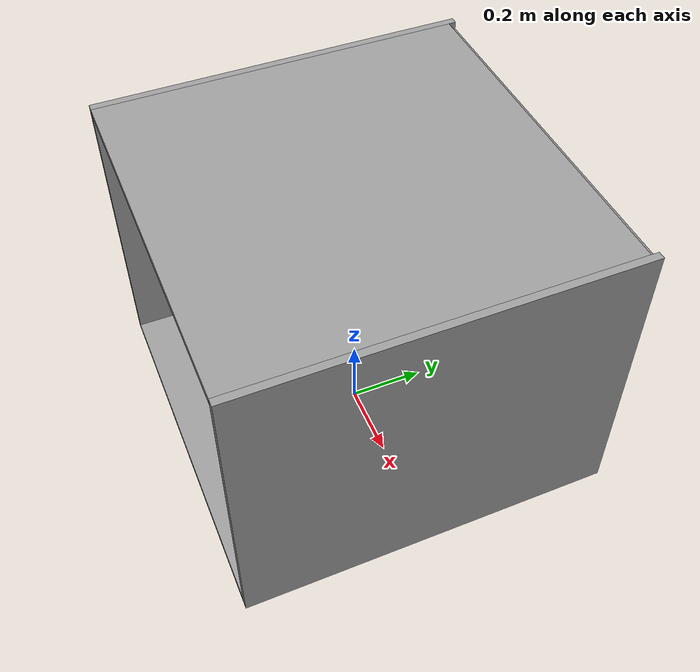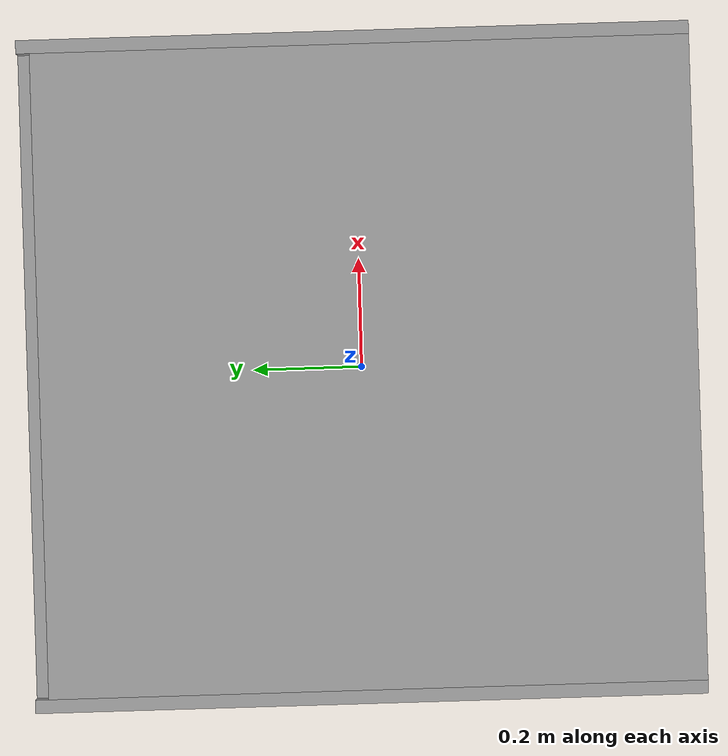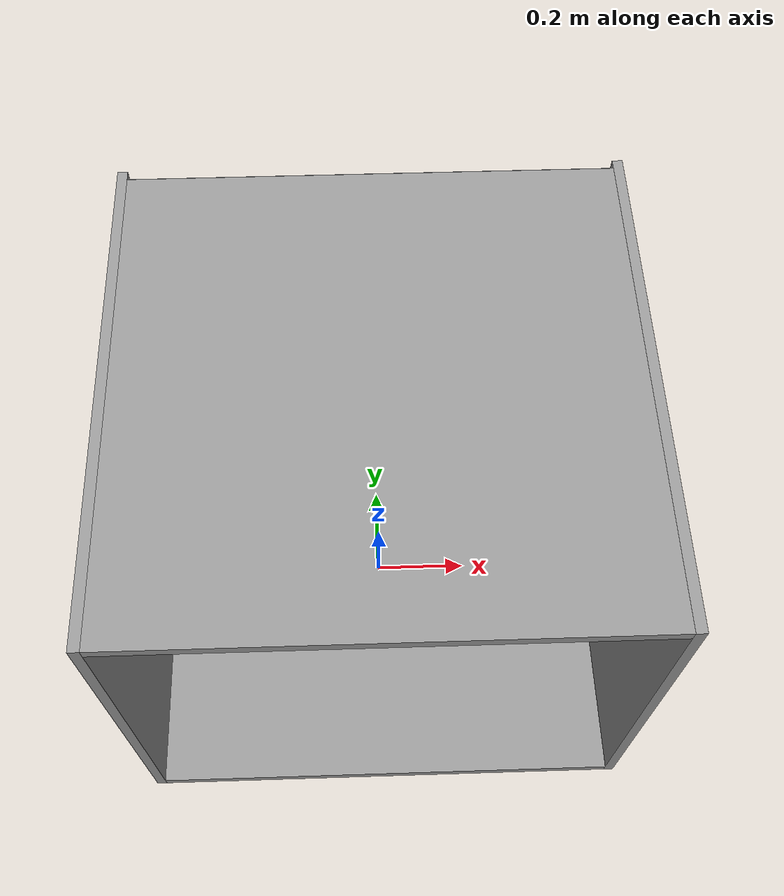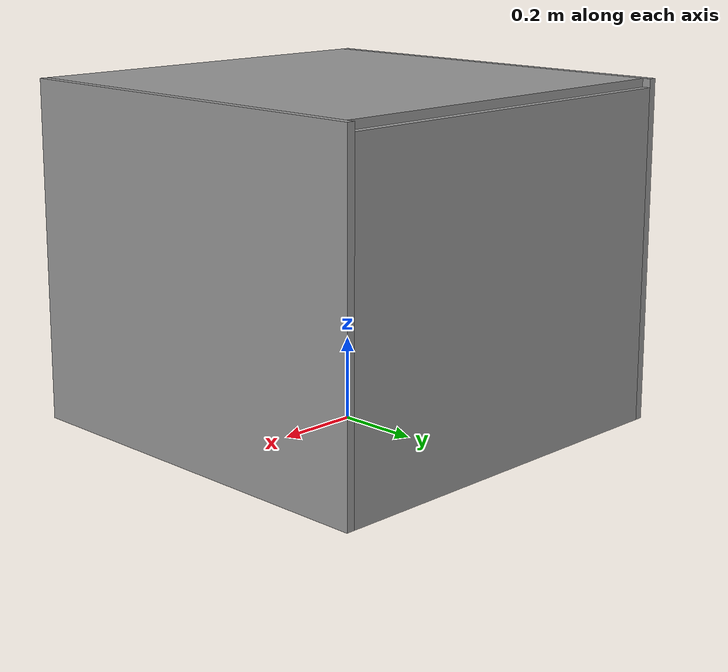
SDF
<?xml version="1.0" ?>
<sdf version="1.5">
  <model name="shelf_1x1x.8_1l">
    <static>true</static>
    <link name="link">

      <collision name="box_1">
        <pose>-0.49 0.0 0.41000000000000003  0 0 0</pose>
        <geometry>
          <box>
            <size>0.020000000000000018 1.0 0.8200000000000001 </size>
          </box>
        </geometry>
      </collision>
      <visual name="box_1">
        <pose>-0.49 0.0 0.41000000000000003  0 0 0</pose>
        <geometry>
          <box>
            <size>0.020000000000000018 1.0 0.8200000000000001 </size>
          </box>
        </geometry>
        <material>
          <script>
            <name>Gazebo/Grey</name>
            <uri>file://media/materials/scripts/gazebo.material</uri>
          </script>
        </material>
      </visual>

      <collision name="box_2">
        <pose>0.49 0.0 0.41000000000000003  0 0 0</pose>
        <geometry>
          <box>
            <size>0.020000000000000018 1.0 0.8200000000000001 </size>
          </box>
        </geometry>
      </collision>
      <visual name="box_2">
        <pose>0.49 0.0 0.41000000000000003  0 0 0</pose>
        <geometry>
          <box>
            <size>0.020000000000000018 1.0 0.8200000000000001 </size>
          </box>
        </geometry>
        <material>
          <script>
            <name>Gazebo/Grey</name>
            <uri>file://media/materials/scripts/gazebo.material</uri>
          </script>
        </material>
      </visual>

      <collision name="box_3">
        <pose>0.0 0.49 0.4  0 0 0</pose>
        <geometry>
          <box>
            <size>0.96 0.020000000000000018 0.8 </size>
          </box>
        </geometry>
      </collision>
      <visual name="box_3">
        <pose>0.0 0.49 0.4  0 0 0</pose>
        <geometry>
          <box>
            <size>0.96 0.020000000000000018 0.8 </size>
          </box>
        </geometry>
        <material>
          <script>
            <name>Gazebo/Grey</name>
            <uri>file://media/materials/scripts/gazebo.material</uri>
          </script>
        </material>
      </visual>

      <collision name="box_4">
        <pose>0.0 -0.010000000000000009 0.01  0 0 0</pose>
        <geometry>
          <box>
            <size>0.96 0.98 0.02 </size>
          </box>
        </geometry>
      </collision>
      <visual name="box_4">
        <pose>0.0 -0.010000000000000009 0.01  0 0 0</pose>
        <geometry>
          <box>
            <size>0.96 0.98 0.02 </size>
          </box>
        </geometry>
        <material>
          <script>
            <name>Gazebo/Grey</name>
            <uri>file://media/materials/scripts/gazebo.material</uri>
          </script>
        </material>
      </visual>

      <collision name="box_5">
        <pose>0.0 -0.010000000000000009 0.81  0 0 0</pose>
        <geometry>
          <box>
            <size>0.96 0.98 0.020000000000000018 </size>
          </box>
        </geometry>
      </collision>
      <visual name="box_5">
        <pose>0.0 -0.010000000000000009 0.81  0 0 0</pose>
        <geometry>
          <box>
            <size>0.96 0.98 0.020000000000000018 </size>
          </box>
        </geometry>
        <material>
          <script>
            <name>Gazebo/Grey</name>
            <uri>file://media/materials/scripts/gazebo.material</uri>
          </script>
        </material>
      </visual>

    </link>
  </model>
</sdf>
